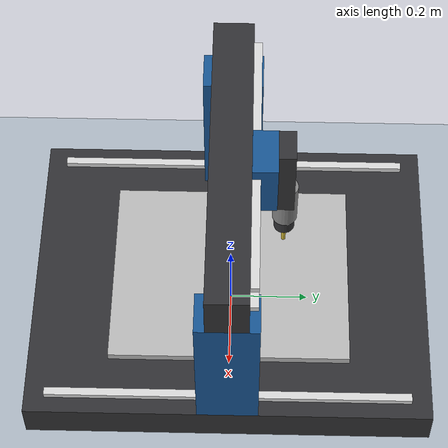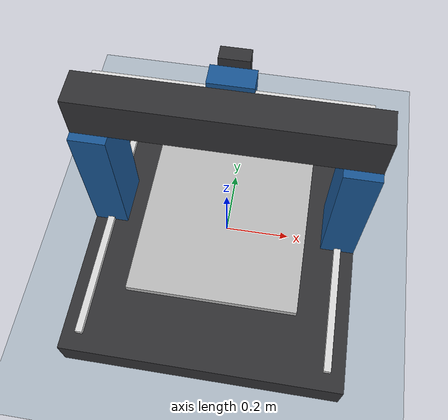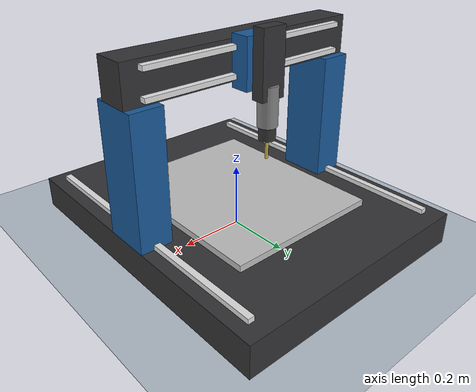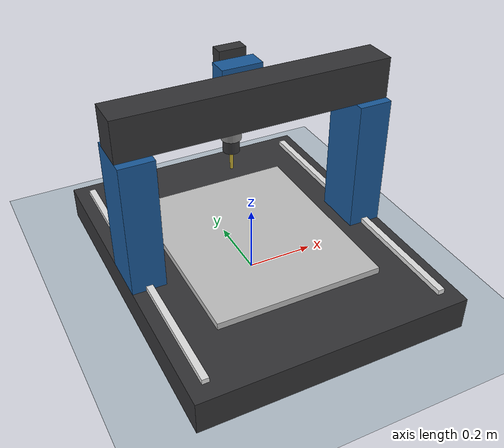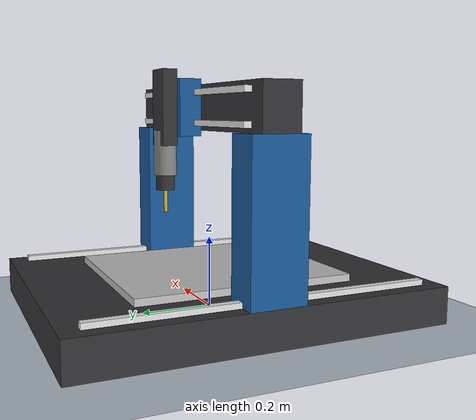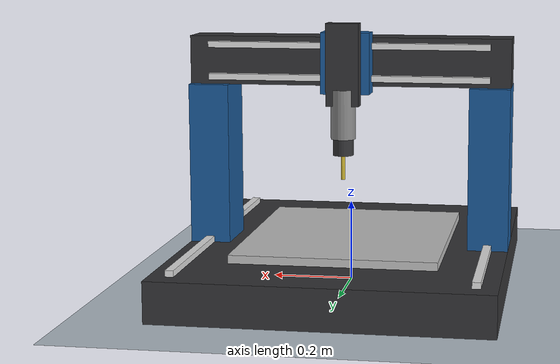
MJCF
<mujoco model="zrcs_3axis_cnc_visualizer">
  <compiler angle="radian" autolimits="true"/>

  <option timestep="0.001" gravity="0 0 -9.81"/>

  <visual>
    <global offwidth="1920" offheight="1080"/>
    <quality shadowsize="4096" offsamples="4"/>
    <headlight ambient="0.38 0.38 0.38" diffuse="0.62 0.62 0.62" specular="0.35 0.35 0.35"/>
    <map znear="0.01"/>
    <rgba haze="0.78 0.82 0.88 1"/>
  </visual>

  <statistic center="0 0 0.30" extent="1.20" meansize="0.08"/>

  <default>
    <joint damping="4" armature="0.01"/>
    <geom contype="1" conaffinity="1" friction="0.45 0.02 0.001"/>
  </default>

  <asset>
    <texture name="sky" type="skybox" builtin="gradient" width="512" height="512"
             rgb1="0.72 0.78 0.86" rgb2="0.94 0.96 0.98"/>
    <texture name="grid" type="2d" builtin="checker" width="512" height="512"
             rgb1="0.62 0.67 0.72" rgb2="0.78 0.82 0.86"/>
    <material name="floor_grid" texture="grid" texrepeat="10 10" reflectance="0.16"/>
    <material name="cast_iron" rgba="0.20 0.20 0.21 1" specular="0.35" shininess="0.50"/>
    <material name="aluminum" rgba="0.75 0.75 0.75 1" specular="0.62" shininess="0.78"/>
    <material name="blue_cover" rgba="0.10 0.35 0.60 1" specular="0.45" shininess="0.60"/>
    <material name="rail_mat" rgba="0.88 0.88 0.88 1" specular="0.78" shininess="0.88"/>
    <material name="spindle_mat" rgba="0.53 0.53 0.53 1" specular="0.58" shininess="0.72"/>
    <material name="tool_mat" rgba="0.80 0.70 0.20 1" emission="0.08" specular="0.80" shininess="0.85"/>
  </asset>

  <worldbody>
    <light name="key_light" pos="2.0 -2.0 3.0" dir="-0.5 0.5 -1" diffuse="1.0 0.98 0.92" specular="0.45 0.45 0.45"/>
    <light name="fill_light" pos="-2.0 1.4 2.0" dir="0.7 -0.4 -1" diffuse="0.55 0.62 0.72" specular="0.16 0.16 0.20"/>
    <camera name="overview" pos="1.20 -1.50 1.00" xyaxes="0.78 0.63 0 -0.33 0.41 0.85"/>
    <geom name="floor" type="plane" size="2.0 2.0 0.02" material="floor_grid"/>

    <body name="machine_bed" pos="0 0 0">
      <geom name="bed" type="box" pos="0 0 0.05" size="0.40 0.50 0.05" material="cast_iron"/>
      <geom name="table" type="box" pos="0 0 0.11" size="0.25 0.30 0.01" material="aluminum"/>
      <geom name="y_rail_left" type="box" pos="-0.35 0 0.1075" size="0.010 0.45 0.0075" material="rail_mat"/>
      <geom name="y_rail_right" type="box" pos="0.35 0 0.1075" size="0.010 0.45 0.0075" material="rail_mat"/>
    </body>

    <body name="y_gantry" pos="0 0 0">
      <joint name="y_slide" type="slide" axis="0 1 0" range="-0.30 0.30" damping="4"/>
      <geom name="pillar_left" type="box" pos="-0.35 0 0.30" size="0.05 0.075 0.20" material="blue_cover"/>
      <geom name="pillar_right" type="box" pos="0.35 0 0.30" size="0.05 0.075 0.20" material="blue_cover"/>
      <geom name="x_beam" type="box" pos="0 0 0.56" size="0.40 0.05 0.06" material="cast_iron"/>
      <geom name="x_rail_top" type="box" pos="0 0.06 0.60" size="0.35 0.010 0.0075" material="rail_mat"/>
      <geom name="x_rail_bottom" type="box" pos="0 0.06 0.52" size="0.35 0.010 0.0075" material="rail_mat"/>

      <body name="x_carriage" pos="0 0 0">
        <joint name="x_slide" type="slide" axis="1 0 0" range="-0.25 0.25" damping="4"/>
        <geom name="x_carriage_block" type="box" pos="0 0.08 0.56" size="0.06 0.03 0.075" material="blue_cover"/>

        <body name="z_head" pos="0 0 0">
          <joint name="z_slide" type="slide" axis="0 0 1" range="-0.15 0.05" damping="3"/>
          <geom name="z_plate" type="box" pos="0 0.13 0.56" size="0.04 0.02 0.10" material="cast_iron"/>
          <geom name="spindle" type="cylinder" pos="0 0.13 0.44" size="0.03 0.06" material="spindle_mat"/>
          <geom name="tool_holder" type="cylinder" pos="0 0.13 0.36" size="0.025 0.02" material="cast_iron"/>
          <geom name="tool" type="cylinder" pos="0 0.13 0.31" size="0.005 0.03" material="tool_mat"/>
          <geom name="tool_tip" type="sphere" pos="0 0.13 0.28" size="0.002" rgba="1 0 0 0" contype="0" conaffinity="0"/>
        </body>
      </body>
    </body>
  </worldbody>
</mujoco>
